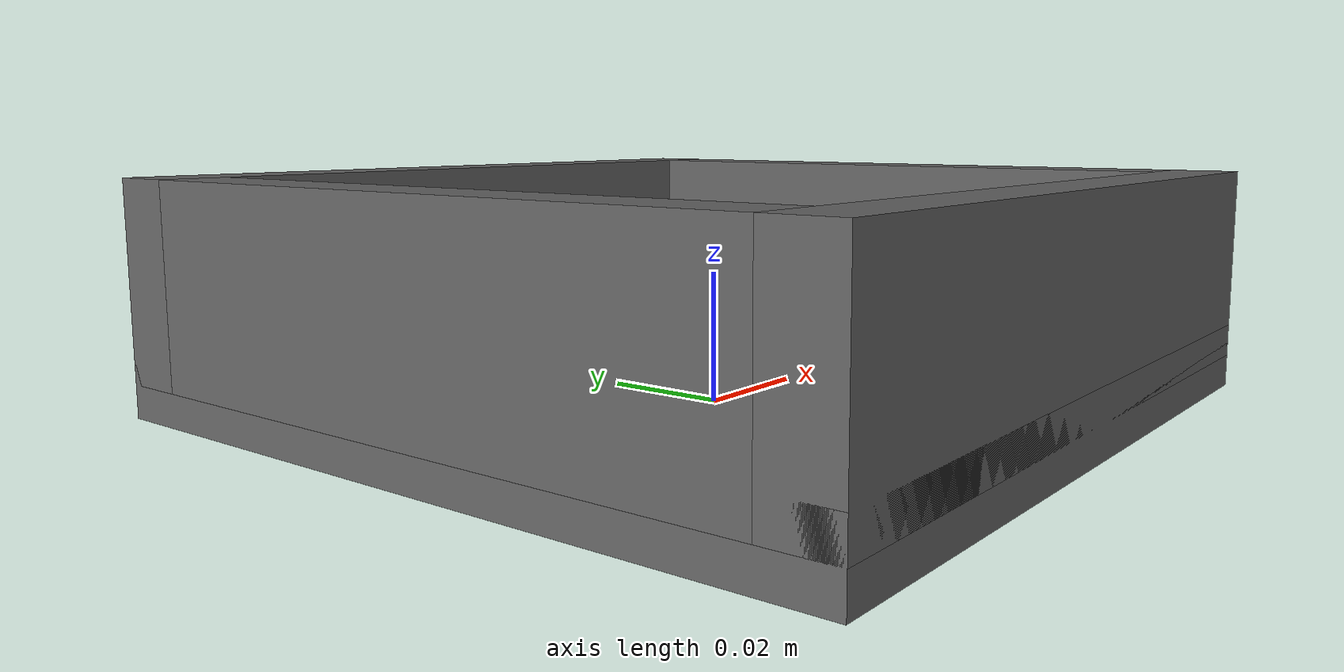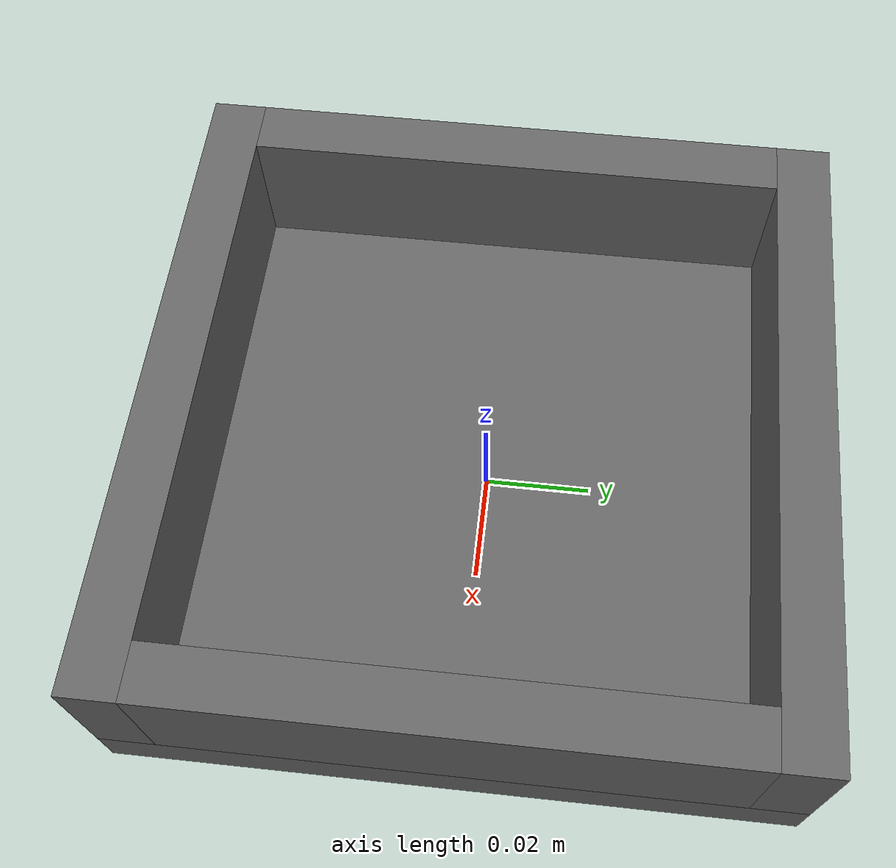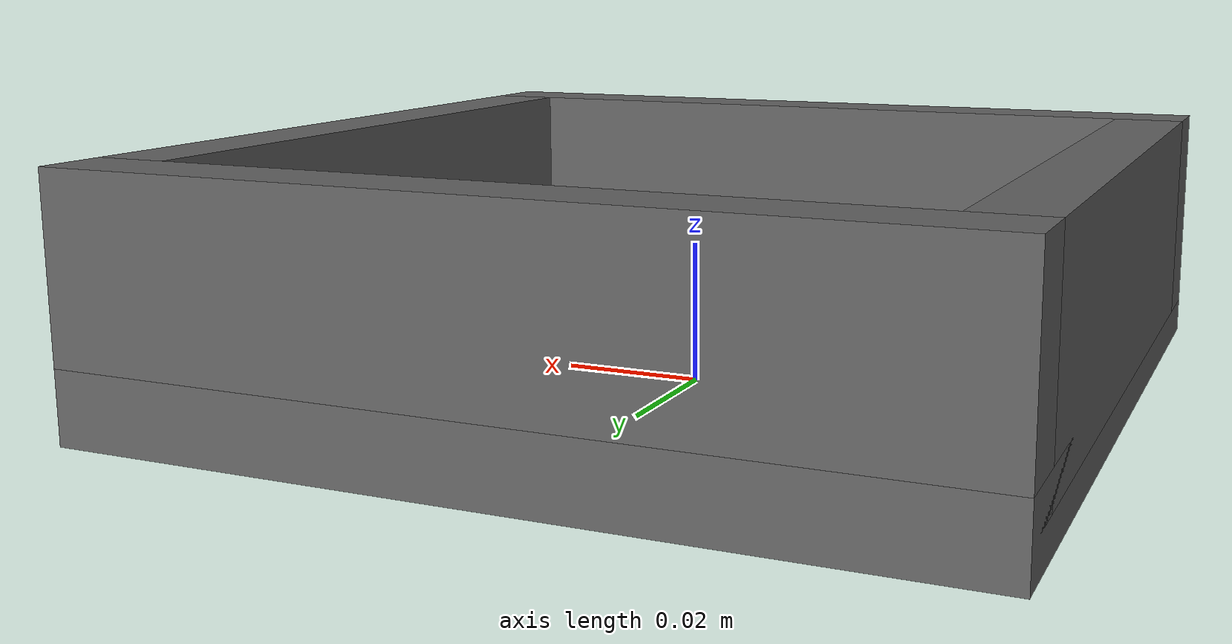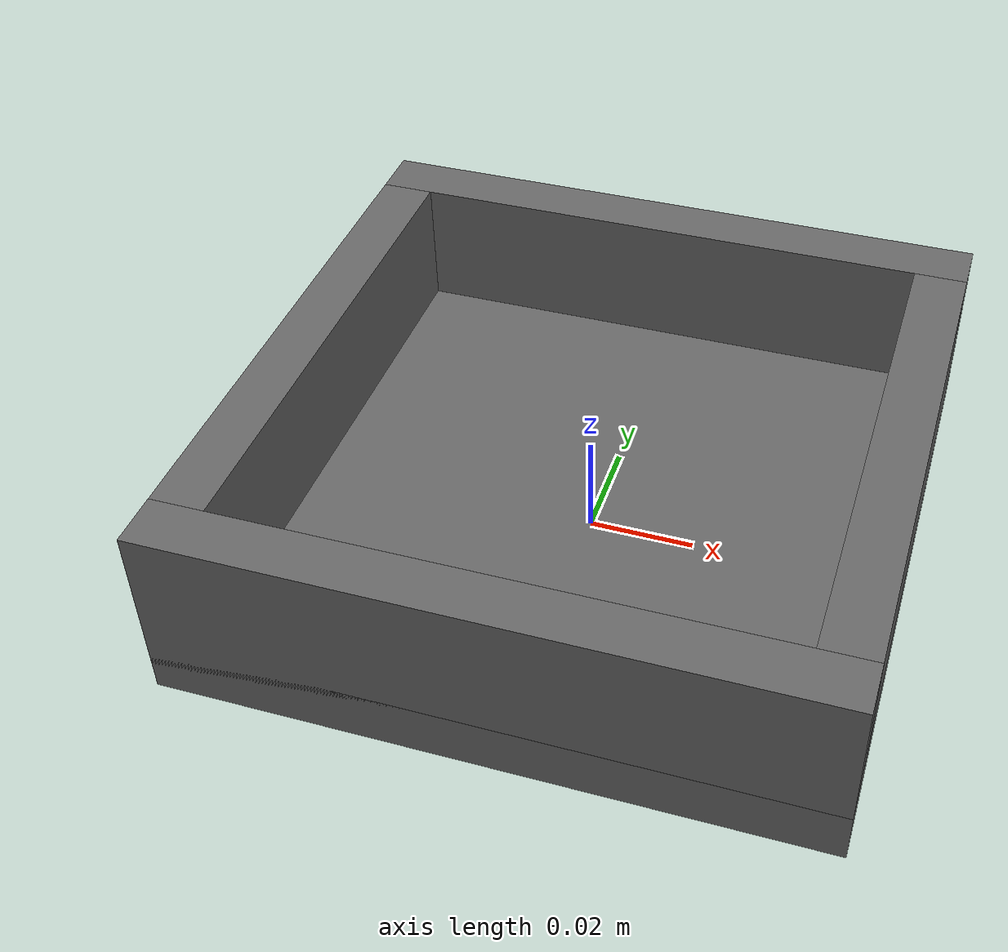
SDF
<?xml version="1.0"?>
<sdf version="1.6">
  <model name="hanoi_bin">
    <static>true</static>
    <link name="bin_link">

      <collision name="base_collision">
        <pose>0 0 0.005 0 0 0</pose>
        <geometry>
          <box>
            <size>0.12 0.12 0.01</size>
          </box>
        </geometry>
        <surface>
          <friction><ode><mu>100.0</mu><mu2>100.0</mu2></ode></friction>
          <contact>
            <ode>
              <kp>1000000.0</kp>
              <kd>1.0</kd>
              <max_vel>0.0</max_vel>
              <min_depth>0.001</min_depth>
            </ode>
          </contact>
        </surface>
      </collision>
      <visual name="base_visual">
        <pose>0 0 0.005 0 0 0</pose>
        <geometry>
          <box>
            <size>0.12 0.12 0.01</size>
          </box>
        </geometry>
        <material>
          <ambient>0.3 0.3 0.3 1</ambient>
          <diffuse>0.4 0.4 0.4 1</diffuse>
          <specular>0.1 0.1 0.1 1</specular>
        </material>
      </visual>

      <collision name="front_wall_collision">
        <pose>0 -0.055 0.02 0 0 0</pose>
        <geometry>
          <box>
            <size>0.12 0.01 0.03</size>
          </box>
        </geometry>
      </collision>
      <visual name="front_wall_visual">
        <pose>0 -0.055 0.02 0 0 0</pose>
        <geometry>
          <box>
            <size>0.12 0.01 0.03</size>
          </box>
        </geometry>
        <material>
          <ambient>0.3 0.3 0.3 1</ambient>
          <diffuse>0.4 0.4 0.4 1</diffuse>
          <specular>0.1 0.1 0.1 1</specular>
        </material>
      </visual>

      <collision name="back_wall_collision">
        <pose>0 0.055 0.02 0 0 0</pose>
        <geometry>
          <box>
            <size>0.12 0.01 0.03</size>
          </box>
        </geometry>
      </collision>
      <visual name="back_wall_visual">
        <pose>0 0.055 0.02 0 0 0</pose>
        <geometry>
          <box>
            <size>0.12 0.01 0.03</size>
          </box>
        </geometry>
        <material>
          <ambient>0.3 0.3 0.3 1</ambient>
          <diffuse>0.4 0.4 0.4 1</diffuse>
          <specular>0.1 0.1 0.1 1</specular>
        </material>
      </visual>

      <collision name="left_wall_collision">
        <pose>-0.055 0 0.02 0 0 0</pose>
        <geometry>
          <box>
            <size>0.01 0.10 0.03</size>
          </box>
        </geometry>
      </collision>
      <visual name="left_wall_visual">
        <pose>-0.055 0 0.02 0 0 0</pose>
        <geometry>
          <box>
            <size>0.01 0.10 0.03</size>
          </box>
        </geometry>
        <material>
          <ambient>0.3 0.3 0.3 1</ambient>
          <diffuse>0.4 0.4 0.4 1</diffuse>
          <specular>0.1 0.1 0.1 1</specular>
        </material>
      </visual>

      <collision name="right_wall_collision">
        <pose>0.055 0 0.02 0 0 0</pose>
        <geometry>
          <box>
            <size>0.01 0.10 0.03</size>
          </box>
        </geometry>
      </collision>
      <visual name="right_wall_visual">
        <pose>0.055 0 0.02 0 0 0</pose>
        <geometry>
          <box>
            <size>0.01 0.10 0.03</size>
          </box>
        </geometry>
        <material>
          <ambient>0.3 0.3 0.3 1</ambient>
          <diffuse>0.4 0.4 0.4 1</diffuse>
          <specular>0.1 0.1 0.1 1</specular>
        </material>
      </visual>
    </link>
  </model>
</sdf>
